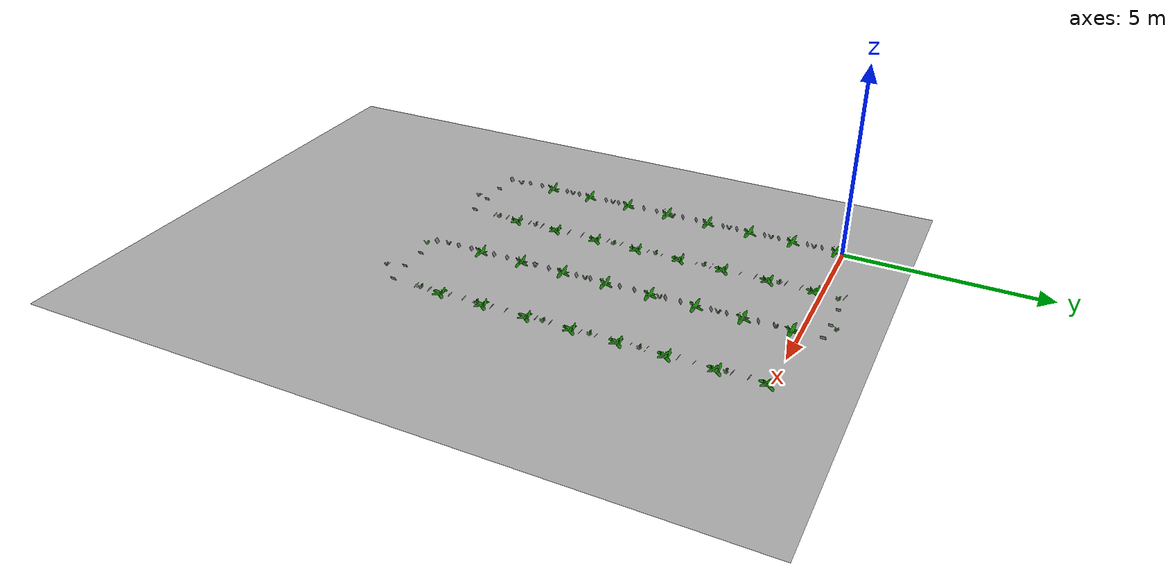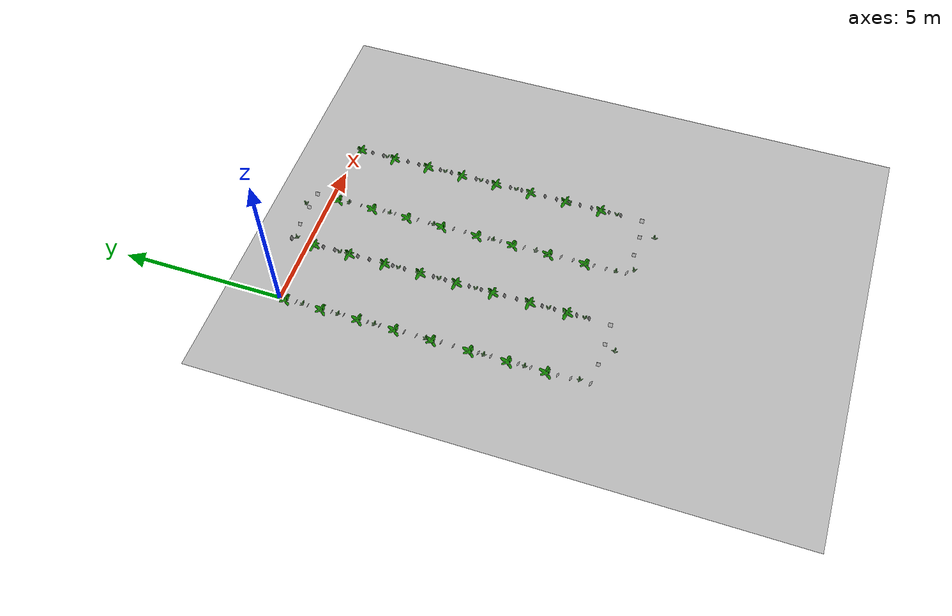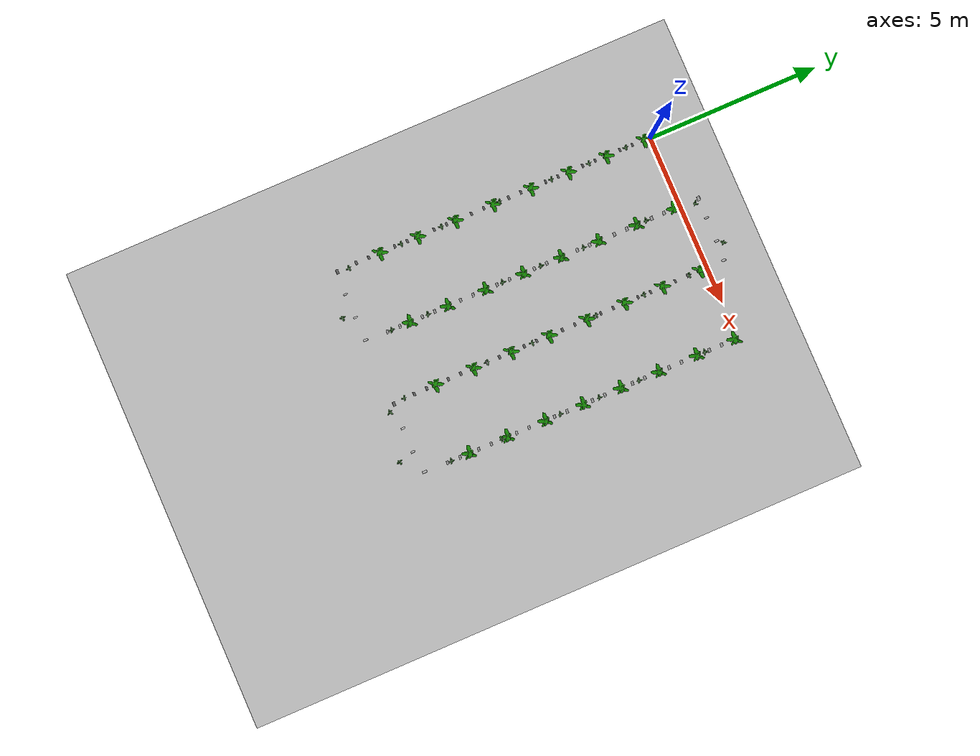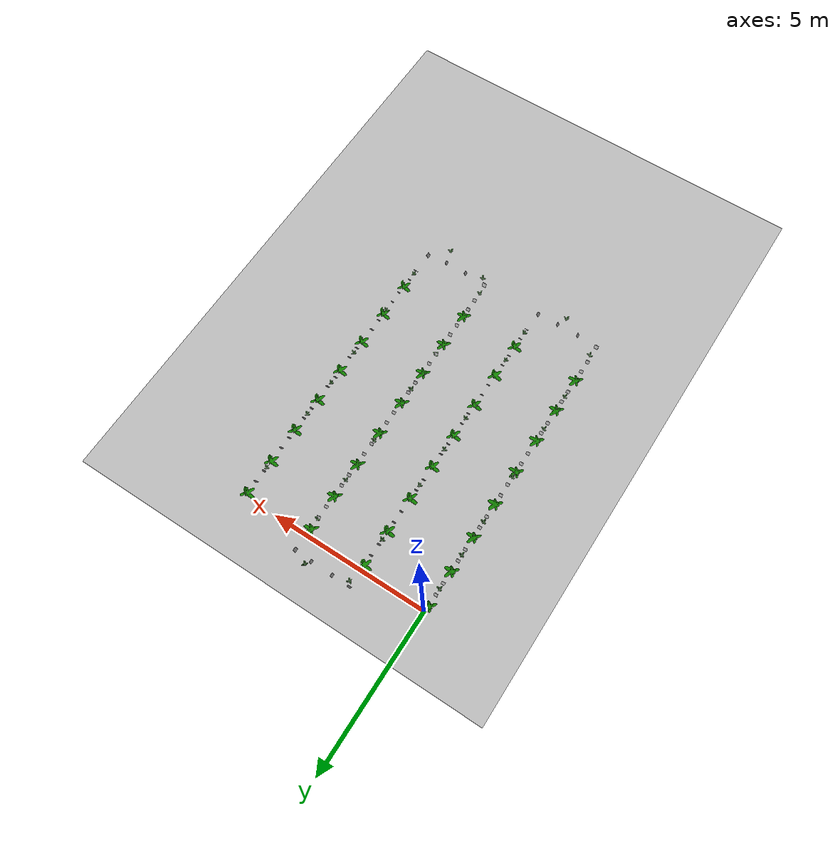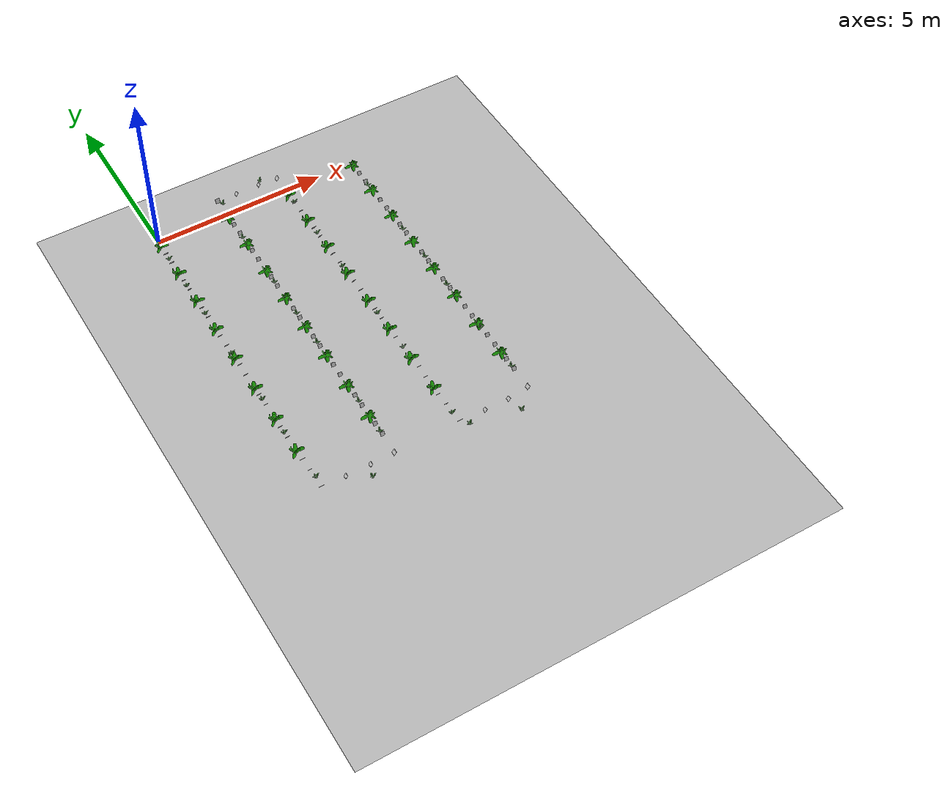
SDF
<sdf version='1.6'>
  <world name='default'>

    <scene>
      <ambient>0.5 0.5 0.5 1</ambient>
      <background>0.7 0.7 0.7 1</background>
      <shadows>0</shadows>
    </scene>

    <include>
      <uri>model://sun</uri>
    </include>

    <include>
      <uri>model://follow_marker</uri>
    </include>

    <include>
        <uri>model://turn_marker</uri>
    </include>

    <include>
        <uri>model://plant_array</uri>
    </include>

    <include>
        <uri>model://field</uri>
    </include>

  	<include>
        <uri>model://weed_array</uri>
    </include>

  </world>
</sdf>

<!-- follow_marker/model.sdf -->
<sdf version='1.6'>
  <model name='follow_marker'>
  <static>true</static>
    <link name='base_link'>
      <visual name='base_link_visual'>
        <pose frame=''>0 0 0 0 0 0</pose>
        <geometry>
          <mesh>
            <scale>1 1 1</scale>
            <uri>model://follow_marker/follow.dae</uri>
          </mesh>
        </geometry>
      </visual>
    </link>
  </model>
</sdf>

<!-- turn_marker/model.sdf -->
<sdf version='1.6'>
  <model name='turn_marker'>
  <static>true</static>
    <link name='base_link'>
      <visual name='base_link_visual'>
        <pose frame=''>0 0 0 0 0 0</pose>
        <geometry>
          <mesh>
            <scale>1 1 1</scale>
            <uri>model://turn_marker/turn.dae</uri>
          </mesh>
        </geometry>
      </visual>
    </link>
  </model>
</sdf>

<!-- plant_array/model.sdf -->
<sdf version='1.6'>
  <model name='plant_array'>
  <static>true</static>
    <link name='base_link'>
      <visual name='base_link_visual'>
        <pose frame=''>0 0 0 0 0 0</pose>
        <geometry>
          <mesh>
            <scale>1 1 1</scale>
            <uri>model://plant_array/plant.dae</uri>
          </mesh>
        </geometry>
      </visual>
    </link>
  </model>
</sdf>

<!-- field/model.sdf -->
<sdf version='1.6'>
  <model name='field'>
  <static>true</static>
    <link name='base_link'>
    <collision name="collision">
        <geometry>
            <mesh>
                <scale>1 1 1</scale>
                <uri>model://field/field.dae</uri>
            </mesh>
        </geometry>
    </collision>
      <visual name='base_link_visual'>
        <pose frame=''>0 0 0 0 0 0</pose>
        <geometry>
          <mesh>
            <scale>1 1 1</scale>
            <uri>model://field/field.dae</uri>
          </mesh>
        </geometry>
      </visual>
    </link>
  </model>
</sdf>

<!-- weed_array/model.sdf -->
<sdf version='1.6'>
  <model name='weed_array'>
  <static>true</static>
    <link name='base_link'>
      <visual name='base_link_visual'>
        <pose frame=''>0 0 0 0 0 0</pose>
        <geometry>
          <mesh>
            <scale>1 1 1</scale>
            <uri>model://weed_array/weed.dae</uri>
          </mesh>
        </geometry>
      </visual>
    </link>
  </model>
</sdf>
